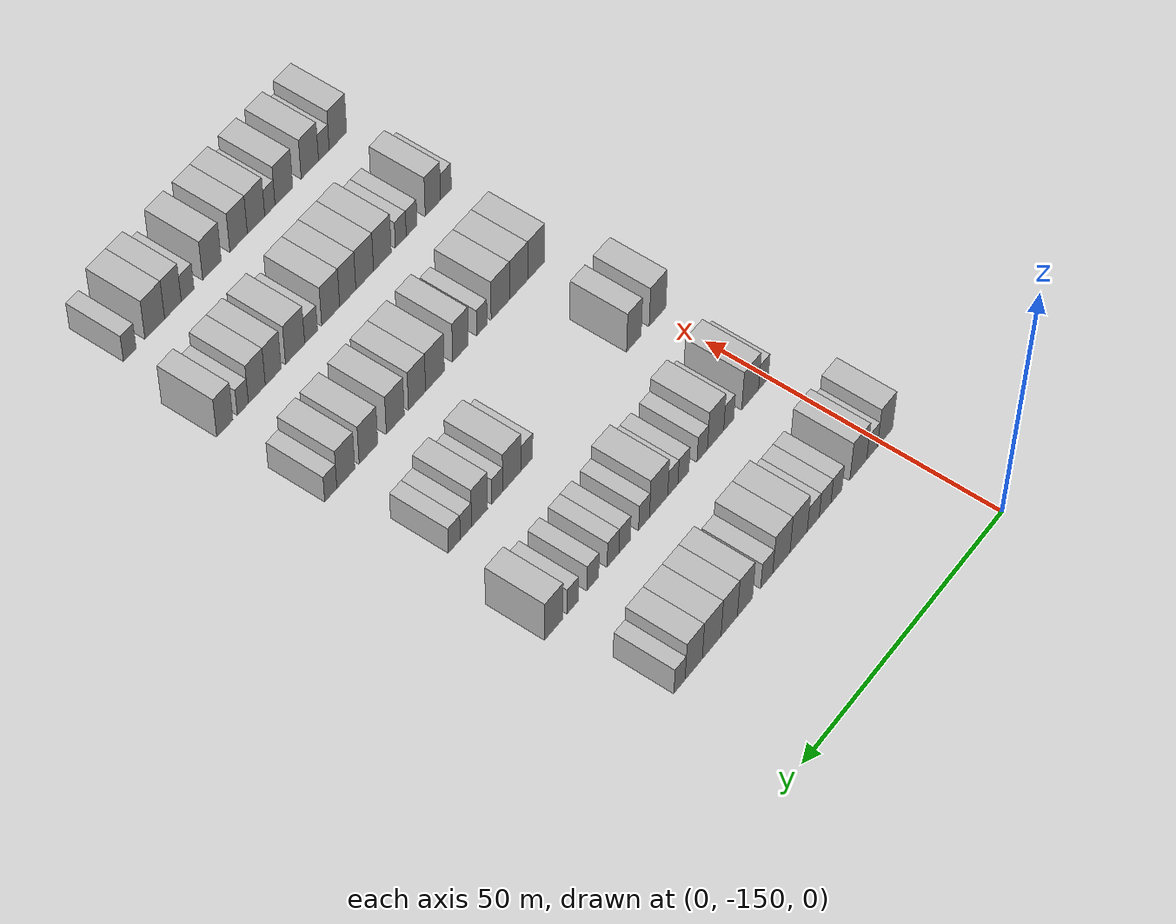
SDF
<sdf version="1.6">
 <world name="default">
  <model name="building_54">
   <static>1</static>
   <pose>25.0000 -150.8825 0 0.000000 0.000000 0.000000</pose>
   <link name="link">
    <pose>0 0 4.50 0 0 0</pose>
    <collision name="collision"><geometry><box><size>10.0000 3.8611 9.0000</size></box></geometry></collision>
    <visual name="visual">
     <cast_shadows>0</cast_shadows>
     <geometry><box><size>10.0000 3.8611 9.0000</size></box></geometry>
     <material>
      <script>
       <uri>model://HANNAS_wall/materials/scripts</uri>
       <uri>model://HANNAS_wall/materials/textures</uri>
       <name>vrc/HANNAS_wall</name>
      </script>
     </material>
    </visual>
   </link>
  </model>
  <model name="building_55">
   <static>1</static>
   <pose>25.0000 -147.5662 0 0.000000 0.000000 0.000000</pose>
   <link name="link">
    <pose>0 0 3.00 0 0 0</pose>
    <collision name="collision"><geometry><box><size>10.0000 2.7713 6.0000</size></box></geometry></collision>
    <visual name="visual">
     <cast_shadows>0</cast_shadows>
     <geometry><box><size>10.0000 2.7713 6.0000</size></box></geometry>
     <material>
      <script>
       <uri>model://HANNAS_wall/materials/scripts</uri>
       <uri>model://HANNAS_wall/materials/textures</uri>
       <name>vrc/HANNAS_wall</name>
      </script>
     </material>
    </visual>
   </link>
  </model>
  <model name="building_56">
   <static>1</static>
   <pose>25.0000 -144.0413 0 0.000000 0.000000 0.000000</pose>
   <link name="link">
    <pose>0 0 4.50 0 0 0</pose>
    <collision name="collision"><geometry><box><size>10.0000 4.2784 9.0000</size></box></geometry></collision>
    <visual name="visual">
     <cast_shadows>0</cast_shadows>
     <geometry><box><size>10.0000 4.2784 9.0000</size></box></geometry>
     <material>
      <script>
       <uri>model://HANNAS_wall/materials/scripts</uri>
       <uri>model://HANNAS_wall/materials/textures</uri>
       <name>vrc/HANNAS_wall</name>
      </script>
     </material>
    </visual>
   </link>
  </model>
  <model name="building_57">
   <static>1</static>
   <pose>25.0000 -138.5179 0 0.000000 0.000000 0.000000</pose>
   <link name="link">
    <pose>0 0 3.00 0 0 0</pose>
    <collision name="collision"><geometry><box><size>10.0000 2.7683 6.0000</size></box></geometry></collision>
    <visual name="visual">
     <cast_shadows>0</cast_shadows>
     <geometry><box><size>10.0000 2.7683 6.0000</size></box></geometry>
     <material>
      <script>
       <uri>model://HANNAS_wall/materials/scripts</uri>
       <uri>model://HANNAS_wall/materials/textures</uri>
       <name>vrc/HANNAS_wall</name>
      </script>
     </material>
    </visual>
   </link>
  </model>
  <model name="building_58">
   <static>1</static>
   <pose>25.0000 -135.6578 0 0.000000 0.000000 0.000000</pose>
   <link name="link">
    <pose>0 0 3.00 0 0 0</pose>
    <collision name="collision"><geometry><box><size>10.0000 2.9520 6.0000</size></box></geometry></collision>
    <visual name="visual">
     <cast_shadows>0</cast_shadows>
     <geometry><box><size>10.0000 2.9520 6.0000</size></box></geometry>
     <material>
      <script>
       <uri>model://HANNAS_wall/materials/scripts</uri>
       <uri>model://HANNAS_wall/materials/textures</uri>
       <name>vrc/HANNAS_wall</name>
      </script>
     </material>
    </visual>
   </link>
  </model>
  <model name="building_59">
   <static>1</static>
   <pose>25.0000 -132.6857 0 0.000000 0.000000 0.000000</pose>
   <link name="link">
    <pose>0 0 3.00 0 0 0</pose>
    <collision name="collision"><geometry><box><size>10.0000 2.9923 6.0000</size></box></geometry></collision>
    <visual name="visual">
     <cast_shadows>0</cast_shadows>
     <geometry><box><size>10.0000 2.9923 6.0000</size></box></geometry>
     <material>
      <script>
       <uri>model://HANNAS_wall/materials/scripts</uri>
       <uri>model://HANNAS_wall/materials/textures</uri>
       <name>vrc/HANNAS_wall</name>
      </script>
     </material>
    </visual>
   </link>
  </model>
  <model name="building_60">
   <static>1</static>
   <pose>25.0000 -129.0565 0 0.000000 0.000000 0.000000</pose>
   <link name="link">
    <pose>0 0 4.50 0 0 0</pose>
    <collision name="collision"><geometry><box><size>10.0000 4.2662 9.0000</size></box></geometry></collision>
    <visual name="visual">
     <cast_shadows>0</cast_shadows>
     <geometry><box><size>10.0000 4.2662 9.0000</size></box></geometry>
     <material>
      <script>
       <uri>model://HANNAS_wall/materials/scripts</uri>
       <uri>model://HANNAS_wall/materials/textures</uri>
       <name>vrc/HANNAS_wall</name>
      </script>
     </material>
    </visual>
   </link>
  </model>
  <model name="building_61">
   <static>1</static>
   <pose>25.0000 -124.8028 0 0.000000 0.000000 0.000000</pose>
   <link name="link">
    <pose>0 0 4.50 0 0 0</pose>
    <collision name="collision"><geometry><box><size>10.0000 4.2411 9.0000</size></box></geometry></collision>
    <visual name="visual">
     <cast_shadows>0</cast_shadows>
     <geometry><box><size>10.0000 4.2411 9.0000</size></box></geometry>
     <material>
      <script>
       <uri>model://HANNAS_wall/materials/scripts</uri>
       <uri>model://HANNAS_wall/materials/textures</uri>
       <name>vrc/HANNAS_wall</name>
      </script>
     </material>
    </visual>
   </link>
  </model>
  <model name="building_62">
   <static>1</static>
   <pose>25.0000 -121.2125 0 0.000000 0.000000 0.000000</pose>
   <link name="link">
    <pose>0 0 3.00 0 0 0</pose>
    <collision name="collision"><geometry><box><size>10.0000 2.9395 6.0000</size></box></geometry></collision>
    <visual name="visual">
     <cast_shadows>0</cast_shadows>
     <geometry><box><size>10.0000 2.9395 6.0000</size></box></geometry>
     <material>
      <script>
       <uri>model://HANNAS_wall/materials/scripts</uri>
       <uri>model://HANNAS_wall/materials/textures</uri>
       <name>vrc/HANNAS_wall</name>
      </script>
     </material>
    </visual>
   </link>
  </model>
  <model name="building_63">
   <static>1</static>
   <pose>25.0000 -115.9065 0 0.000000 0.000000 0.000000</pose>
   <link name="link">
    <pose>0 0 4.50 0 0 0</pose>
    <collision name="collision"><geometry><box><size>10.0000 3.6724 9.0000</size></box></geometry></collision>
    <visual name="visual">
     <cast_shadows>0</cast_shadows>
     <geometry><box><size>10.0000 3.6724 9.0000</size></box></geometry>
     <material>
      <script>
       <uri>model://HANNAS_wall/materials/scripts</uri>
       <uri>model://HANNAS_wall/materials/textures</uri>
       <name>vrc/HANNAS_wall</name>
      </script>
     </material>
    </visual>
   </link>
  </model>
  <model name="building_64">
   <static>1</static>
   <pose>25.0000 -112.1109 0 0.000000 0.000000 0.000000</pose>
   <link name="link">
    <pose>0 0 4.50 0 0 0</pose>
    <collision name="collision"><geometry><box><size>10.0000 3.9188 9.0000</size></box></geometry></collision>
    <visual name="visual">
     <cast_shadows>0</cast_shadows>
     <geometry><box><size>10.0000 3.9188 9.0000</size></box></geometry>
     <material>
      <script>
       <uri>model://HANNAS_wall/materials/scripts</uri>
       <uri>model://HANNAS_wall/materials/textures</uri>
       <name>vrc/HANNAS_wall</name>
      </script>
     </material>
    </visual>
   </link>
  </model>
  <model name="building_65">
   <static>1</static>
   <pose>25.0000 -107.9146 0 0.000000 0.000000 0.000000</pose>
   <link name="link">
    <pose>0 0 4.50 0 0 0</pose>
    <collision name="collision"><geometry><box><size>10.0000 4.4738 9.0000</size></box></geometry></collision>
    <visual name="visual">
     <cast_shadows>0</cast_shadows>
     <geometry><box><size>10.0000 4.4738 9.0000</size></box></geometry>
     <material>
      <script>
       <uri>model://HANNAS_wall/materials/scripts</uri>
       <uri>model://HANNAS_wall/materials/textures</uri>
       <name>vrc/HANNAS_wall</name>
      </script>
     </material>
    </visual>
   </link>
  </model>
  <model name="building_66">
   <static>1</static>
   <pose>25.0000 -103.6319 0 0.000000 0.000000 0.000000</pose>
   <link name="link">
    <pose>0 0 4.50 0 0 0</pose>
    <collision name="collision"><geometry><box><size>10.0000 4.0917 9.0000</size></box></geometry></collision>
    <visual name="visual">
     <cast_shadows>0</cast_shadows>
     <geometry><box><size>10.0000 4.0917 9.0000</size></box></geometry>
     <material>
      <script>
       <uri>model://HANNAS_wall/materials/scripts</uri>
       <uri>model://HANNAS_wall/materials/textures</uri>
       <name>vrc/HANNAS_wall</name>
      </script>
     </material>
    </visual>
   </link>
  </model>
  <model name="building_67">
   <static>1</static>
   <pose>25.0000 -100.2652 0 0.000000 0.000000 0.000000</pose>
   <link name="link">
    <pose>0 0 3.00 0 0 0</pose>
    <collision name="collision"><geometry><box><size>10.0000 2.6417 6.0000</size></box></geometry></collision>
    <visual name="visual">
     <cast_shadows>0</cast_shadows>
     <geometry><box><size>10.0000 2.6417 6.0000</size></box></geometry>
     <material>
      <script>
       <uri>model://HANNAS_wall/materials/scripts</uri>
       <uri>model://HANNAS_wall/materials/textures</uri>
       <name>vrc/HANNAS_wall</name>
      </script>
     </material>
    </visual>
   </link>
  </model>
  <model name="building_217">
   <static>1</static>
   <pose>44.0000 -148.4936 0 0.000000 0.000000 0.000000</pose>
   <link name="link">
    <pose>0 0 3.00 0 0 0</pose>
    <collision name="collision"><geometry><box><size>10.0000 2.4545 6.0000</size></box></geometry></collision>
    <visual name="visual">
     <cast_shadows>0</cast_shadows>
     <geometry><box><size>10.0000 2.4545 6.0000</size></box></geometry>
     <material>
      <script>
       <uri>model://HANNAS_wall/materials/scripts</uri>
       <uri>model://HANNAS_wall/materials/textures</uri>
       <name>vrc/HANNAS_wall</name>
      </script>
     </material>
    </visual>
   </link>
  </model>
  <model name="building_218">
   <static>1</static>
   <pose>44.0000 -145.1571 0 0.000000 0.000000 0.000000</pose>
   <link name="link">
    <pose>0 0 4.50 0 0 0</pose>
    <collision name="collision"><geometry><box><size>10.0000 4.2184 9.0000</size></box></geometry></collision>
    <visual name="visual">
     <cast_shadows>0</cast_shadows>
     <geometry><box><size>10.0000 4.2184 9.0000</size></box></geometry>
     <material>
      <script>
       <uri>model://HANNAS_wall/materials/scripts</uri>
       <uri>model://HANNAS_wall/materials/textures</uri>
       <name>vrc/HANNAS_wall</name>
      </script>
     </material>
    </visual>
   </link>
  </model>
  <model name="building_219">
   <static>1</static>
   <pose>44.0000 -139.7915 0 0.000000 0.000000 0.000000</pose>
   <link name="link">
    <pose>0 0 3.00 0 0 0</pose>
    <collision name="collision"><geometry><box><size>10.0000 2.5128 6.0000</size></box></geometry></collision>
    <visual name="visual">
     <cast_shadows>0</cast_shadows>
     <geometry><box><size>10.0000 2.5128 6.0000</size></box></geometry>
     <material>
      <script>
       <uri>model://HANNAS_wall/materials/scripts</uri>
       <uri>model://HANNAS_wall/materials/textures</uri>
       <name>vrc/HANNAS_wall</name>
      </script>
     </material>
    </visual>
   </link>
  </model>
  <model name="building_220">
   <static>1</static>
   <pose>44.0000 -136.5145 0 0.000000 0.000000 0.000000</pose>
   <link name="link">
    <pose>0 0 4.50 0 0 0</pose>
    <collision name="collision"><geometry><box><size>10.0000 4.0413 9.0000</size></box></geometry></collision>
    <visual name="visual">
     <cast_shadows>0</cast_shadows>
     <geometry><box><size>10.0000 4.0413 9.0000</size></box></geometry>
     <material>
      <script>
       <uri>model://HANNAS_wall/materials/scripts</uri>
       <uri>model://HANNAS_wall/materials/textures</uri>
       <name>vrc/HANNAS_wall</name>
      </script>
     </material>
    </visual>
   </link>
  </model>
  <model name="building_221">
   <static>1</static>
   <pose>44.0000 -133.2113 0 0.000000 0.000000 0.000000</pose>
   <link name="link">
    <pose>0 0 3.00 0 0 0</pose>
    <collision name="collision"><geometry><box><size>10.0000 2.5652 6.0000</size></box></geometry></collision>
    <visual name="visual">
     <cast_shadows>0</cast_shadows>
     <geometry><box><size>10.0000 2.5652 6.0000</size></box></geometry>
     <material>
      <script>
       <uri>model://HANNAS_wall/materials/scripts</uri>
       <uri>model://HANNAS_wall/materials/textures</uri>
       <name>vrc/HANNAS_wall</name>
      </script>
     </material>
    </visual>
   </link>
  </model>
  <model name="building_222">
   <static>1</static>
   <pose>44.0000 -128.5936 0 0.000000 0.000000 0.000000</pose>
   <link name="link">
    <pose>0 0 3.00 0 0 0</pose>
    <collision name="collision"><geometry><box><size>10.0000 2.6702 6.0000</size></box></geometry></collision>
    <visual name="visual">
     <cast_shadows>0</cast_shadows>
     <geometry><box><size>10.0000 2.6702 6.0000</size></box></geometry>
     <material>
      <script>
       <uri>model://HANNAS_wall/materials/scripts</uri>
       <uri>model://HANNAS_wall/materials/textures</uri>
       <name>vrc/HANNAS_wall</name>
      </script>
     </material>
    </visual>
   </link>
  </model>
  <model name="building_223">
   <static>1</static>
   <pose>44.0000 -126.0182 0 0.000000 0.000000 0.000000</pose>
   <link name="link">
    <pose>0 0 3.00 0 0 0</pose>
    <collision name="collision"><geometry><box><size>10.0000 2.4804 6.0000</size></box></geometry></collision>
    <visual name="visual">
     <cast_shadows>0</cast_shadows>
     <geometry><box><size>10.0000 2.4804 6.0000</size></box></geometry>
     <material>
      <script>
       <uri>model://HANNAS_wall/materials/scripts</uri>
       <uri>model://HANNAS_wall/materials/textures</uri>
       <name>vrc/HANNAS_wall</name>
      </script>
     </material>
    </visual>
   </link>
  </model>
  <model name="building_224">
   <static>1</static>
   <pose>44.0000 -122.5617 0 0.000000 0.000000 0.000000</pose>
   <link name="link">
    <pose>0 0 4.50 0 0 0</pose>
    <collision name="collision"><geometry><box><size>10.0000 4.4325 9.0000</size></box></geometry></collision>
    <visual name="visual">
     <cast_shadows>0</cast_shadows>
     <geometry><box><size>10.0000 4.4325 9.0000</size></box></geometry>
     <material>
      <script>
       <uri>model://HANNAS_wall/materials/scripts</uri>
       <uri>model://HANNAS_wall/materials/textures</uri>
       <name>vrc/HANNAS_wall</name>
      </script>
     </material>
    </visual>
   </link>
  </model>
  <model name="building_225">
   <static>1</static>
   <pose>44.0000 -119.0333 0 0.000000 0.000000 0.000000</pose>
   <link name="link">
    <pose>0 0 3.00 0 0 0</pose>
    <collision name="collision"><geometry><box><size>10.0000 2.6243 6.0000</size></box></geometry></collision>
    <visual name="visual">
     <cast_shadows>0</cast_shadows>
     <geometry><box><size>10.0000 2.6243 6.0000</size></box></geometry>
     <material>
      <script>
       <uri>model://HANNAS_wall/materials/scripts</uri>
       <uri>model://HANNAS_wall/materials/textures</uri>
       <name>vrc/HANNAS_wall</name>
      </script>
     </material>
    </visual>
   </link>
  </model>
  <model name="building_226">
   <static>1</static>
   <pose>44.0000 -114.3722 0 0.000000 0.000000 0.000000</pose>
   <link name="link">
    <pose>0 0 3.00 0 0 0</pose>
    <collision name="collision"><geometry><box><size>10.0000 2.6979 6.0000</size></box></geometry></collision>
    <visual name="visual">
     <cast_shadows>0</cast_shadows>
     <geometry><box><size>10.0000 2.6979 6.0000</size></box></geometry>
     <material>
      <script>
       <uri>model://HANNAS_wall/materials/scripts</uri>
       <uri>model://HANNAS_wall/materials/textures</uri>
       <name>vrc/HANNAS_wall</name>
      </script>
     </material>
    </visual>
   </link>
  </model>
  <model name="building_227">
   <static>1</static>
   <pose>44.0000 -111.6174 0 0.000000 0.000000 0.000000</pose>
   <link name="link">
    <pose>0 0 3.00 0 0 0</pose>
    <collision name="collision"><geometry><box><size>10.0000 2.8118 6.0000</size></box></geometry></collision>
    <visual name="visual">
     <cast_shadows>0</cast_shadows>
     <geometry><box><size>10.0000 2.8118 6.0000</size></box></geometry>
     <material>
      <script>
       <uri>model://HANNAS_wall/materials/scripts</uri>
       <uri>model://HANNAS_wall/materials/textures</uri>
       <name>vrc/HANNAS_wall</name>
      </script>
     </material>
    </visual>
   </link>
  </model>
  <model name="building_228">
   <static>1</static>
   <pose>44.0000 -106.8320 0 0.000000 0.000000 0.000000</pose>
   <link name="link">
    <pose>0 0 3.00 0 0 0</pose>
    <collision name="collision"><geometry><box><size>10.0000 2.7588 6.0000</size></box></geometry></collision>
    <visual name="visual">
     <cast_shadows>0</cast_shadows>
     <geometry><box><size>10.0000 2.7588 6.0000</size></box></geometry>
     <material>
      <script>
       <uri>model://HANNAS_wall/materials/scripts</uri>
       <uri>model://HANNAS_wall/materials/textures</uri>
       <name>vrc/HANNAS_wall</name>
      </script>
     </material>
    </visual>
   </link>
  </model>
  <model name="building_229">
   <static>1</static>
   <pose>44.0000 -102.1267 0 0.000000 0.000000 0.000000</pose>
   <link name="link">
    <pose>0 0 3.00 0 0 0</pose>
    <collision name="collision"><geometry><box><size>10.0000 2.6518 6.0000</size></box></geometry></collision>
    <visual name="visual">
     <cast_shadows>0</cast_shadows>
     <geometry><box><size>10.0000 2.6518 6.0000</size></box></geometry>
     <material>
      <script>
       <uri>model://HANNAS_wall/materials/scripts</uri>
       <uri>model://HANNAS_wall/materials/textures</uri>
       <name>vrc/HANNAS_wall</name>
      </script>
     </material>
    </visual>
   </link>
  </model>
  <model name="building_230">
   <static>1</static>
   <pose>44.0000 -97.6982 0 0.000000 0.000000 0.000000</pose>
   <link name="link">
    <pose>0 0 4.50 0 0 0</pose>
    <collision name="collision"><geometry><box><size>10.0000 4.2053 9.0000</size></box></geometry></collision>
    <visual name="visual">
     <cast_shadows>0</cast_shadows>
     <geometry><box><size>10.0000 4.2053 9.0000</size></box></geometry>
     <material>
      <script>
       <uri>model://HANNAS_wall/materials/scripts</uri>
       <uri>model://HANNAS_wall/materials/textures</uri>
       <name>vrc/HANNAS_wall</name>
      </script>
     </material>
    </visual>
   </link>
  </model>
  <model name="building_389">
   <static>1</static>
   <pose>63.0000 -149.4729 0 0.000000 0.000000 0.000000</pose>
   <link name="link">
    <pose>0 0 4.50 0 0 0</pose>
    <collision name="collision"><geometry><box><size>10.0000 4.1572 9.0000</size></box></geometry></collision>
    <visual name="visual">
     <cast_shadows>0</cast_shadows>
     <geometry><box><size>10.0000 4.1572 9.0000</size></box></geometry>
     <material>
      <script>
       <uri>model://HANNAS_wall/materials/scripts</uri>
       <uri>model://HANNAS_wall/materials/textures</uri>
       <name>vrc/HANNAS_wall</name>
      </script>
     </material>
    </visual>
   </link>
  </model>
  <model name="building_390">
   <static>1</static>
   <pose>63.0000 -143.5876 0 0.000000 0.000000 0.000000</pose>
   <link name="link">
    <pose>0 0 4.50 0 0 0</pose>
    <collision name="collision"><geometry><box><size>10.0000 3.6134 9.0000</size></box></geometry></collision>
    <visual name="visual">
     <cast_shadows>0</cast_shadows>
     <geometry><box><size>10.0000 3.6134 9.0000</size></box></geometry>
     <material>
      <script>
       <uri>model://HANNAS_wall/materials/scripts</uri>
       <uri>model://HANNAS_wall/materials/textures</uri>
       <name>vrc/HANNAS_wall</name>
      </script>
     </material>
    </visual>
   </link>
  </model>
  <model name="building_391">
   <static>1</static>
   <pose>63.0000 -117.6150 0 0.000000 0.000000 0.000000</pose>
   <link name="link">
    <pose>0 0 3.00 0 0 0</pose>
    <collision name="collision"><geometry><box><size>10.0000 2.7772 6.0000</size></box></geometry></collision>
    <visual name="visual">
     <cast_shadows>0</cast_shadows>
     <geometry><box><size>10.0000 2.7772 6.0000</size></box></geometry>
     <material>
      <script>
       <uri>model://HANNAS_wall/materials/scripts</uri>
       <uri>model://HANNAS_wall/materials/textures</uri>
       <name>vrc/HANNAS_wall</name>
      </script>
     </material>
    </visual>
   </link>
  </model>
  <model name="building_392">
   <static>1</static>
   <pose>63.0000 -114.0514 0 0.000000 0.000000 0.000000</pose>
   <link name="link">
    <pose>0 0 4.50 0 0 0</pose>
    <collision name="collision"><geometry><box><size>10.0000 4.3501 9.0000</size></box></geometry></collision>
    <visual name="visual">
     <cast_shadows>0</cast_shadows>
     <geometry><box><size>10.0000 4.3501 9.0000</size></box></geometry>
     <material>
      <script>
       <uri>model://HANNAS_wall/materials/scripts</uri>
       <uri>model://HANNAS_wall/materials/textures</uri>
       <name>vrc/HANNAS_wall</name>
      </script>
     </material>
    </visual>
   </link>
  </model>
  <model name="building_393">
   <static>1</static>
   <pose>63.0000 -110.6097 0 0.000000 0.000000 0.000000</pose>
   <link name="link">
    <pose>0 0 3.00 0 0 0</pose>
    <collision name="collision"><geometry><box><size>10.0000 2.5334 6.0000</size></box></geometry></collision>
    <visual name="visual">
     <cast_shadows>0</cast_shadows>
     <geometry><box><size>10.0000 2.5334 6.0000</size></box></geometry>
     <material>
      <script>
       <uri>model://HANNAS_wall/materials/scripts</uri>
       <uri>model://HANNAS_wall/materials/textures</uri>
       <name>vrc/HANNAS_wall</name>
      </script>
     </material>
    </visual>
   </link>
  </model>
  <model name="building_394">
   <static>1</static>
   <pose>63.0000 -106.4754 0 0.000000 0.000000 0.000000</pose>
   <link name="link">
    <pose>0 0 4.50 0 0 0</pose>
    <collision name="collision"><geometry><box><size>10.0000 3.7352 9.0000</size></box></geometry></collision>
    <visual name="visual">
     <cast_shadows>0</cast_shadows>
     <geometry><box><size>10.0000 3.7352 9.0000</size></box></geometry>
     <material>
      <script>
       <uri>model://HANNAS_wall/materials/scripts</uri>
       <uri>model://HANNAS_wall/materials/textures</uri>
       <name>vrc/HANNAS_wall</name>
      </script>
     </material>
    </visual>
   </link>
  </model>
  <model name="building_395">
   <static>1</static>
   <pose>63.0000 -103.2960 0 0.000000 0.000000 0.000000</pose>
   <link name="link">
    <pose>0 0 3.00 0 0 0</pose>
    <collision name="collision"><geometry><box><size>10.0000 2.6235 6.0000</size></box></geometry></collision>
    <visual name="visual">
     <cast_shadows>0</cast_shadows>
     <geometry><box><size>10.0000 2.6235 6.0000</size></box></geometry>
     <material>
      <script>
       <uri>model://HANNAS_wall/materials/scripts</uri>
       <uri>model://HANNAS_wall/materials/textures</uri>
       <name>vrc/HANNAS_wall</name>
      </script>
     </material>
    </visual>
   </link>
  </model>
  <model name="building_396">
   <static>1</static>
   <pose>63.0000 -100.6237 0 0.000000 0.000000 0.000000</pose>
   <link name="link">
    <pose>0 0 3.00 0 0 0</pose>
    <collision name="collision"><geometry><box><size>10.0000 2.7212 6.0000</size></box></geometry></collision>
    <visual name="visual">
     <cast_shadows>0</cast_shadows>
     <geometry><box><size>10.0000 2.7212 6.0000</size></box></geometry>
     <material>
      <script>
       <uri>model://HANNAS_wall/materials/scripts</uri>
       <uri>model://HANNAS_wall/materials/textures</uri>
       <name>vrc/HANNAS_wall</name>
      </script>
     </material>
    </visual>
   </link>
  </model>
  <model name="building_560">
   <static>1</static>
   <pose>82.0000 -146.0122 0 0.000000 0.000000 0.000000</pose>
   <link name="link">
    <pose>0 0 4.50 0 0 0</pose>
    <collision name="collision"><geometry><box><size>10.0000 4.1546 9.0000</size></box></geometry></collision>
    <visual name="visual">
     <cast_shadows>0</cast_shadows>
     <geometry><box><size>10.0000 4.1546 9.0000</size></box></geometry>
     <material>
      <script>
       <uri>model://HANNAS_wall/materials/scripts</uri>
       <uri>model://HANNAS_wall/materials/textures</uri>
       <name>vrc/HANNAS_wall</name>
      </script>
     </material>
    </visual>
   </link>
  </model>
  <model name="building_561">
   <static>1</static>
   <pose>82.0000 -141.7136 0 0.000000 0.000000 0.000000</pose>
   <link name="link">
    <pose>0 0 4.50 0 0 0</pose>
    <collision name="collision"><geometry><box><size>10.0000 4.4424 9.0000</size></box></geometry></collision>
    <visual name="visual">
     <cast_shadows>0</cast_shadows>
     <geometry><box><size>10.0000 4.4424 9.0000</size></box></geometry>
     <material>
      <script>
       <uri>model://HANNAS_wall/materials/scripts</uri>
       <uri>model://HANNAS_wall/materials/textures</uri>
       <name>vrc/HANNAS_wall</name>
      </script>
     </material>
    </visual>
   </link>
  </model>
  <model name="building_562">
   <static>1</static>
   <pose>82.0000 -137.2453 0 0.000000 0.000000 0.000000</pose>
   <link name="link">
    <pose>0 0 4.50 0 0 0</pose>
    <collision name="collision"><geometry><box><size>10.0000 4.4943 9.0000</size></box></geometry></collision>
    <visual name="visual">
     <cast_shadows>0</cast_shadows>
     <geometry><box><size>10.0000 4.4943 9.0000</size></box></geometry>
     <material>
      <script>
       <uri>model://HANNAS_wall/materials/scripts</uri>
       <uri>model://HANNAS_wall/materials/textures</uri>
       <name>vrc/HANNAS_wall</name>
      </script>
     </material>
    </visual>
   </link>
  </model>
  <model name="building_563">
   <static>1</static>
   <pose>82.0000 -132.7556 0 0.000000 0.000000 0.000000</pose>
   <link name="link">
    <pose>0 0 3.00 0 0 0</pose>
    <collision name="collision"><geometry><box><size>10.0000 2.4852 6.0000</size></box></geometry></collision>
    <visual name="visual">
     <cast_shadows>0</cast_shadows>
     <geometry><box><size>10.0000 2.4852 6.0000</size></box></geometry>
     <material>
      <script>
       <uri>model://HANNAS_wall/materials/scripts</uri>
       <uri>model://HANNAS_wall/materials/textures</uri>
       <name>vrc/HANNAS_wall</name>
      </script>
     </material>
    </visual>
   </link>
  </model>
  <model name="building_564">
   <static>1</static>
   <pose>82.0000 -127.6416 0 0.000000 0.000000 0.000000</pose>
   <link name="link">
    <pose>0 0 4.50 0 0 0</pose>
    <collision name="collision"><geometry><box><size>10.0000 3.7428 9.0000</size></box></geometry></collision>
    <visual name="visual">
     <cast_shadows>0</cast_shadows>
     <geometry><box><size>10.0000 3.7428 9.0000</size></box></geometry>
     <material>
      <script>
       <uri>model://HANNAS_wall/materials/scripts</uri>
       <uri>model://HANNAS_wall/materials/textures</uri>
       <name>vrc/HANNAS_wall</name>
      </script>
     </material>
    </visual>
   </link>
  </model>
  <model name="building_565">
   <static>1</static>
   <pose>82.0000 -121.5636 0 0.000000 0.000000 0.000000</pose>
   <link name="link">
    <pose>0 0 4.50 0 0 0</pose>
    <collision name="collision"><geometry><box><size>10.0000 4.4130 9.0000</size></box></geometry></collision>
    <visual name="visual">
     <cast_shadows>0</cast_shadows>
     <geometry><box><size>10.0000 4.4130 9.0000</size></box></geometry>
     <material>
      <script>
       <uri>model://HANNAS_wall/materials/scripts</uri>
       <uri>model://HANNAS_wall/materials/textures</uri>
       <name>vrc/HANNAS_wall</name>
      </script>
     </material>
    </visual>
   </link>
  </model>
  <model name="building_566">
   <static>1</static>
   <pose>82.0000 -117.3421 0 0.000000 0.000000 0.000000</pose>
   <link name="link">
    <pose>0 0 4.50 0 0 0</pose>
    <collision name="collision"><geometry><box><size>10.0000 4.0299 9.0000</size></box></geometry></collision>
    <visual name="visual">
     <cast_shadows>0</cast_shadows>
     <geometry><box><size>10.0000 4.0299 9.0000</size></box></geometry>
     <material>
      <script>
       <uri>model://HANNAS_wall/materials/scripts</uri>
       <uri>model://HANNAS_wall/materials/textures</uri>
       <name>vrc/HANNAS_wall</name>
      </script>
     </material>
    </visual>
   </link>
  </model>
  <model name="building_567">
   <static>1</static>
   <pose>82.0000 -112.2421 0 0.000000 0.000000 0.000000</pose>
   <link name="link">
    <pose>0 0 4.50 0 0 0</pose>
    <collision name="collision"><geometry><box><size>10.0000 4.1702 9.0000</size></box></geometry></collision>
    <visual name="visual">
     <cast_shadows>0</cast_shadows>
     <geometry><box><size>10.0000 4.1702 9.0000</size></box></geometry>
     <material>
      <script>
       <uri>model://HANNAS_wall/materials/scripts</uri>
       <uri>model://HANNAS_wall/materials/textures</uri>
       <name>vrc/HANNAS_wall</name>
      </script>
     </material>
    </visual>
   </link>
  </model>
  <model name="building_568">
   <static>1</static>
   <pose>82.0000 -106.0123 0 0.000000 0.000000 0.000000</pose>
   <link name="link">
    <pose>0 0 4.50 0 0 0</pose>
    <collision name="collision"><geometry><box><size>10.0000 4.2893 9.0000</size></box></geometry></collision>
    <visual name="visual">
     <cast_shadows>0</cast_shadows>
     <geometry><box><size>10.0000 4.2893 9.0000</size></box></geometry>
     <material>
      <script>
       <uri>model://HANNAS_wall/materials/scripts</uri>
       <uri>model://HANNAS_wall/materials/textures</uri>
       <name>vrc/HANNAS_wall</name>
      </script>
     </material>
    </visual>
   </link>
  </model>
  <model name="building_569">
   <static>1</static>
   <pose>82.0000 -100.8141 0 0.000000 0.000000 0.000000</pose>
   <link name="link">
    <pose>0 0 4.50 0 0 0</pose>
    <collision name="collision"><geometry><box><size>10.0000 4.1071 9.0000</size></box></geometry></collision>
    <visual name="visual">
     <cast_shadows>0</cast_shadows>
     <geometry><box><size>10.0000 4.1071 9.0000</size></box></geometry>
     <material>
      <script>
       <uri>model://HANNAS_wall/materials/scripts</uri>
       <uri>model://HANNAS_wall/materials/textures</uri>
       <name>vrc/HANNAS_wall</name>
      </script>
     </material>
    </visual>
   </link>
  </model>
  <model name="building_570">
   <static>1</static>
   <pose>82.0000 -97.3782 0 0.000000 0.000000 0.000000</pose>
   <link name="link">
    <pose>0 0 3.00 0 0 0</pose>
    <collision name="collision"><geometry><box><size>10.0000 2.7646 6.0000</size></box></geometry></collision>
    <visual name="visual">
     <cast_shadows>0</cast_shadows>
     <geometry><box><size>10.0000 2.7646 6.0000</size></box></geometry>
     <material>
      <script>
       <uri>model://HANNAS_wall/materials/scripts</uri>
       <uri>model://HANNAS_wall/materials/textures</uri>
       <name>vrc/HANNAS_wall</name>
      </script>
     </material>
    </visual>
   </link>
  </model>
  <model name="building_727">
   <static>1</static>
   <pose>101.0000 -149.6343 0 0.000000 0.000000 0.000000</pose>
   <link name="link">
    <pose>0 0 3.00 0 0 0</pose>
    <collision name="collision"><geometry><box><size>10.0000 2.6302 6.0000</size></box></geometry></collision>
    <visual name="visual">
     <cast_shadows>0</cast_shadows>
     <geometry><box><size>10.0000 2.6302 6.0000</size></box></geometry>
     <material>
      <script>
       <uri>model://HANNAS_wall/materials/scripts</uri>
       <uri>model://HANNAS_wall/materials/textures</uri>
       <name>vrc/HANNAS_wall</name>
      </script>
     </material>
    </visual>
   </link>
  </model>
  <model name="building_728">
   <static>1</static>
   <pose>101.0000 -146.4441 0 0.000000 0.000000 0.000000</pose>
   <link name="link">
    <pose>0 0 4.50 0 0 0</pose>
    <collision name="collision"><geometry><box><size>10.0000 3.7503 9.0000</size></box></geometry></collision>
    <visual name="visual">
     <cast_shadows>0</cast_shadows>
     <geometry><box><size>10.0000 3.7503 9.0000</size></box></geometry>
     <material>
      <script>
       <uri>model://HANNAS_wall/materials/scripts</uri>
       <uri>model://HANNAS_wall/materials/textures</uri>
       <name>vrc/HANNAS_wall</name>
      </script>
     </material>
    </visual>
   </link>
  </model>
  <model name="building_729">
   <static>1</static>
   <pose>101.0000 -141.2668 0 0.000000 0.000000 0.000000</pose>
   <link name="link">
    <pose>0 0 3.00 0 0 0</pose>
    <collision name="collision"><geometry><box><size>10.0000 2.6042 6.0000</size></box></geometry></collision>
    <visual name="visual">
     <cast_shadows>0</cast_shadows>
     <geometry><box><size>10.0000 2.6042 6.0000</size></box></geometry>
     <material>
      <script>
       <uri>model://HANNAS_wall/materials/scripts</uri>
       <uri>model://HANNAS_wall/materials/textures</uri>
       <name>vrc/HANNAS_wall</name>
      </script>
     </material>
    </visual>
   </link>
  </model>
  <model name="building_730">
   <static>1</static>
   <pose>101.0000 -138.6477 0 0.000000 0.000000 0.000000</pose>
   <link name="link">
    <pose>0 0 3.00 0 0 0</pose>
    <collision name="collision"><geometry><box><size>10.0000 2.6341 6.0000</size></box></geometry></collision>
    <visual name="visual">
     <cast_shadows>0</cast_shadows>
     <geometry><box><size>10.0000 2.6341 6.0000</size></box></geometry>
     <material>
      <script>
       <uri>model://HANNAS_wall/materials/scripts</uri>
       <uri>model://HANNAS_wall/materials/textures</uri>
       <name>vrc/HANNAS_wall</name>
      </script>
     </material>
    </visual>
   </link>
  </model>
  <model name="building_731">
   <static>1</static>
   <pose>101.0000 -134.2177 0 0.000000 0.000000 0.000000</pose>
   <link name="link">
    <pose>0 0 4.50 0 0 0</pose>
    <collision name="collision"><geometry><box><size>10.0000 4.2258 9.0000</size></box></geometry></collision>
    <visual name="visual">
     <cast_shadows>0</cast_shadows>
     <geometry><box><size>10.0000 4.2258 9.0000</size></box></geometry>
     <material>
      <script>
       <uri>model://HANNAS_wall/materials/scripts</uri>
       <uri>model://HANNAS_wall/materials/textures</uri>
       <name>vrc/HANNAS_wall</name>
      </script>
     </material>
    </visual>
   </link>
  </model>
  <model name="building_732">
   <static>1</static>
   <pose>101.0000 -129.9952 0 0.000000 0.000000 0.000000</pose>
   <link name="link">
    <pose>0 0 4.50 0 0 0</pose>
    <collision name="collision"><geometry><box><size>10.0000 4.2193 9.0000</size></box></geometry></collision>
    <visual name="visual">
     <cast_shadows>0</cast_shadows>
     <geometry><box><size>10.0000 4.2193 9.0000</size></box></geometry>
     <material>
      <script>
       <uri>model://HANNAS_wall/materials/scripts</uri>
       <uri>model://HANNAS_wall/materials/textures</uri>
       <name>vrc/HANNAS_wall</name>
      </script>
     </material>
    </visual>
   </link>
  </model>
  <model name="building_733">
   <static>1</static>
   <pose>101.0000 -125.9795 0 0.000000 0.000000 0.000000</pose>
   <link name="link">
    <pose>0 0 4.50 0 0 0</pose>
    <collision name="collision"><geometry><box><size>10.0000 3.8121 9.0000</size></box></geometry></collision>
    <visual name="visual">
     <cast_shadows>0</cast_shadows>
     <geometry><box><size>10.0000 3.8121 9.0000</size></box></geometry>
     <material>
      <script>
       <uri>model://HANNAS_wall/materials/scripts</uri>
       <uri>model://HANNAS_wall/materials/textures</uri>
       <name>vrc/HANNAS_wall</name>
      </script>
     </material>
    </visual>
   </link>
  </model>
  <model name="building_734">
   <static>1</static>
   <pose>101.0000 -121.9603 0 0.000000 0.000000 0.000000</pose>
   <link name="link">
    <pose>0 0 4.50 0 0 0</pose>
    <collision name="collision"><geometry><box><size>10.0000 4.2264 9.0000</size></box></geometry></collision>
    <visual name="visual">
     <cast_shadows>0</cast_shadows>
     <geometry><box><size>10.0000 4.2264 9.0000</size></box></geometry>
     <material>
      <script>
       <uri>model://HANNAS_wall/materials/scripts</uri>
       <uri>model://HANNAS_wall/materials/textures</uri>
       <name>vrc/HANNAS_wall</name>
      </script>
     </material>
    </visual>
   </link>
  </model>
  <model name="building_735">
   <static>1</static>
   <pose>101.0000 -117.3638 0 0.000000 0.000000 0.000000</pose>
   <link name="link">
    <pose>0 0 3.00 0 0 0</pose>
    <collision name="collision"><geometry><box><size>10.0000 2.9667 6.0000</size></box></geometry></collision>
    <visual name="visual">
     <cast_shadows>0</cast_shadows>
     <geometry><box><size>10.0000 2.9667 6.0000</size></box></geometry>
     <material>
      <script>
       <uri>model://HANNAS_wall/materials/scripts</uri>
       <uri>model://HANNAS_wall/materials/textures</uri>
       <name>vrc/HANNAS_wall</name>
      </script>
     </material>
    </visual>
   </link>
  </model>
  <model name="building_736">
   <static>1</static>
   <pose>101.0000 -113.6547 0 0.000000 0.000000 0.000000</pose>
   <link name="link">
    <pose>0 0 4.50 0 0 0</pose>
    <collision name="collision"><geometry><box><size>10.0000 4.4514 9.0000</size></box></geometry></collision>
    <visual name="visual">
     <cast_shadows>0</cast_shadows>
     <geometry><box><size>10.0000 4.4514 9.0000</size></box></geometry>
     <material>
      <script>
       <uri>model://HANNAS_wall/materials/scripts</uri>
       <uri>model://HANNAS_wall/materials/textures</uri>
       <name>vrc/HANNAS_wall</name>
      </script>
     </material>
    </visual>
   </link>
  </model>
  <model name="building_737">
   <static>1</static>
   <pose>101.0000 -108.6122 0 0.000000 0.000000 0.000000</pose>
   <link name="link">
    <pose>0 0 4.50 0 0 0</pose>
    <collision name="collision"><geometry><box><size>10.0000 3.6336 9.0000</size></box></geometry></collision>
    <visual name="visual">
     <cast_shadows>0</cast_shadows>
     <geometry><box><size>10.0000 3.6336 9.0000</size></box></geometry>
     <material>
      <script>
       <uri>model://HANNAS_wall/materials/scripts</uri>
       <uri>model://HANNAS_wall/materials/textures</uri>
       <name>vrc/HANNAS_wall</name>
      </script>
     </material>
    </visual>
   </link>
  </model>
  <model name="building_738">
   <static>1</static>
   <pose>101.0000 -104.8666 0 0.000000 0.000000 0.000000</pose>
   <link name="link">
    <pose>0 0 4.50 0 0 0</pose>
    <collision name="collision"><geometry><box><size>10.0000 3.8575 9.0000</size></box></geometry></collision>
    <visual name="visual">
     <cast_shadows>0</cast_shadows>
     <geometry><box><size>10.0000 3.8575 9.0000</size></box></geometry>
     <material>
      <script>
       <uri>model://HANNAS_wall/materials/scripts</uri>
       <uri>model://HANNAS_wall/materials/textures</uri>
       <name>vrc/HANNAS_wall</name>
      </script>
     </material>
    </visual>
   </link>
  </model>
  <model name="building_739">
   <static>1</static>
   <pose>101.0000 -101.6798 0 0.000000 0.000000 0.000000</pose>
   <link name="link">
    <pose>0 0 3.00 0 0 0</pose>
    <collision name="collision"><geometry><box><size>10.0000 2.5162 6.0000</size></box></geometry></collision>
    <visual name="visual">
     <cast_shadows>0</cast_shadows>
     <geometry><box><size>10.0000 2.5162 6.0000</size></box></geometry>
     <material>
      <script>
       <uri>model://HANNAS_wall/materials/scripts</uri>
       <uri>model://HANNAS_wall/materials/textures</uri>
       <name>vrc/HANNAS_wall</name>
      </script>
     </material>
    </visual>
   </link>
  </model>
  <model name="building_740">
   <static>1</static>
   <pose>101.0000 -97.6007 0 0.000000 0.000000 0.000000</pose>
   <link name="link">
    <pose>0 0 4.50 0 0 0</pose>
    <collision name="collision"><geometry><box><size>10.0000 3.6419 9.0000</size></box></geometry></collision>
    <visual name="visual">
     <cast_shadows>0</cast_shadows>
     <geometry><box><size>10.0000 3.6419 9.0000</size></box></geometry>
     <material>
      <script>
       <uri>model://HANNAS_wall/materials/scripts</uri>
       <uri>model://HANNAS_wall/materials/textures</uri>
       <name>vrc/HANNAS_wall</name>
      </script>
     </material>
    </visual>
   </link>
  </model>
  <model name="building_904">
   <static>1</static>
   <pose>120.0000 -148.3058 0 0.000000 0.000000 0.000000</pose>
   <link name="link">
    <pose>0 0 4.50 0 0 0</pose>
    <collision name="collision"><geometry><box><size>10.0000 4.2257 9.0000</size></box></geometry></collision>
    <visual name="visual">
     <cast_shadows>0</cast_shadows>
     <geometry><box><size>10.0000 4.2257 9.0000</size></box></geometry>
     <material>
      <script>
       <uri>model://HANNAS_wall/materials/scripts</uri>
       <uri>model://HANNAS_wall/materials/textures</uri>
       <name>vrc/HANNAS_wall</name>
      </script>
     </material>
    </visual>
   </link>
  </model>
  <model name="building_905">
   <static>1</static>
   <pose>120.0000 -144.9013 0 0.000000 0.000000 0.000000</pose>
   <link name="link">
    <pose>0 0 3.00 0 0 0</pose>
    <collision name="collision"><geometry><box><size>10.0000 2.5834 6.0000</size></box></geometry></collision>
    <visual name="visual">
     <cast_shadows>0</cast_shadows>
     <geometry><box><size>10.0000 2.5834 6.0000</size></box></geometry>
     <material>
      <script>
       <uri>model://HANNAS_wall/materials/scripts</uri>
       <uri>model://HANNAS_wall/materials/textures</uri>
       <name>vrc/HANNAS_wall</name>
      </script>
     </material>
    </visual>
   </link>
  </model>
  <model name="building_906">
   <static>1</static>
   <pose>120.0000 -141.5222 0 0.000000 0.000000 0.000000</pose>
   <link name="link">
    <pose>0 0 4.50 0 0 0</pose>
    <collision name="collision"><geometry><box><size>10.0000 4.1747 9.0000</size></box></geometry></collision>
    <visual name="visual">
     <cast_shadows>0</cast_shadows>
     <geometry><box><size>10.0000 4.1747 9.0000</size></box></geometry>
     <material>
      <script>
       <uri>model://HANNAS_wall/materials/scripts</uri>
       <uri>model://HANNAS_wall/materials/textures</uri>
       <name>vrc/HANNAS_wall</name>
      </script>
     </material>
    </visual>
   </link>
  </model>
  <model name="building_907">
   <static>1</static>
   <pose>120.0000 -135.3286 0 0.000000 0.000000 0.000000</pose>
   <link name="link">
    <pose>0 0 4.50 0 0 0</pose>
    <collision name="collision"><geometry><box><size>10.0000 4.2126 9.0000</size></box></geometry></collision>
    <visual name="visual">
     <cast_shadows>0</cast_shadows>
     <geometry><box><size>10.0000 4.2126 9.0000</size></box></geometry>
     <material>
      <script>
       <uri>model://HANNAS_wall/materials/scripts</uri>
       <uri>model://HANNAS_wall/materials/textures</uri>
       <name>vrc/HANNAS_wall</name>
      </script>
     </material>
    </visual>
   </link>
  </model>
  <model name="building_908">
   <static>1</static>
   <pose>120.0000 -132.0034 0 0.000000 0.000000 0.000000</pose>
   <link name="link">
    <pose>0 0 3.00 0 0 0</pose>
    <collision name="collision"><geometry><box><size>10.0000 2.4378 6.0000</size></box></geometry></collision>
    <visual name="visual">
     <cast_shadows>0</cast_shadows>
     <geometry><box><size>10.0000 2.4378 6.0000</size></box></geometry>
     <material>
      <script>
       <uri>model://HANNAS_wall/materials/scripts</uri>
       <uri>model://HANNAS_wall/materials/textures</uri>
       <name>vrc/HANNAS_wall</name>
      </script>
     </material>
    </visual>
   </link>
  </model>
  <model name="building_909">
   <static>1</static>
   <pose>120.0000 -128.7365 0 0.000000 0.000000 0.000000</pose>
   <link name="link">
    <pose>0 0 4.50 0 0 0</pose>
    <collision name="collision"><geometry><box><size>10.0000 4.0961 9.0000</size></box></geometry></collision>
    <visual name="visual">
     <cast_shadows>0</cast_shadows>
     <geometry><box><size>10.0000 4.0961 9.0000</size></box></geometry>
     <material>
      <script>
       <uri>model://HANNAS_wall/materials/scripts</uri>
       <uri>model://HANNAS_wall/materials/textures</uri>
       <name>vrc/HANNAS_wall</name>
      </script>
     </material>
    </visual>
   </link>
  </model>
  <model name="building_910">
   <static>1</static>
   <pose>120.0000 -124.6383 0 0.000000 0.000000 0.000000</pose>
   <link name="link">
    <pose>0 0 4.50 0 0 0</pose>
    <collision name="collision"><geometry><box><size>10.0000 4.1002 9.0000</size></box></geometry></collision>
    <visual name="visual">
     <cast_shadows>0</cast_shadows>
     <geometry><box><size>10.0000 4.1002 9.0000</size></box></geometry>
     <material>
      <script>
       <uri>model://HANNAS_wall/materials/scripts</uri>
       <uri>model://HANNAS_wall/materials/textures</uri>
       <name>vrc/HANNAS_wall</name>
      </script>
     </material>
    </visual>
   </link>
  </model>
  <model name="building_911">
   <static>1</static>
   <pose>120.0000 -118.4348 0 0.000000 0.000000 0.000000</pose>
   <link name="link">
    <pose>0 0 4.50 0 0 0</pose>
    <collision name="collision"><geometry><box><size>10.0000 4.3069 9.0000</size></box></geometry></collision>
    <visual name="visual">
     <cast_shadows>0</cast_shadows>
     <geometry><box><size>10.0000 4.3069 9.0000</size></box></geometry>
     <material>
      <script>
       <uri>model://HANNAS_wall/materials/scripts</uri>
       <uri>model://HANNAS_wall/materials/textures</uri>
       <name>vrc/HANNAS_wall</name>
      </script>
     </material>
    </visual>
   </link>
  </model>
  <model name="building_912">
   <static>1</static>
   <pose>120.0000 -112.8316 0 0.000000 0.000000 0.000000</pose>
   <link name="link">
    <pose>0 0 3.00 0 0 0</pose>
    <collision name="collision"><geometry><box><size>10.0000 2.8995 6.0000</size></box></geometry></collision>
    <visual name="visual">
     <cast_shadows>0</cast_shadows>
     <geometry><box><size>10.0000 2.8995 6.0000</size></box></geometry>
     <material>
      <script>
       <uri>model://HANNAS_wall/materials/scripts</uri>
       <uri>model://HANNAS_wall/materials/textures</uri>
       <name>vrc/HANNAS_wall</name>
      </script>
     </material>
    </visual>
   </link>
  </model>
  <model name="building_913">
   <static>1</static>
   <pose>120.0000 -109.4763 0 0.000000 0.000000 0.000000</pose>
   <link name="link">
    <pose>0 0 4.50 0 0 0</pose>
    <collision name="collision"><geometry><box><size>10.0000 3.8110 9.0000</size></box></geometry></collision>
    <visual name="visual">
     <cast_shadows>0</cast_shadows>
     <geometry><box><size>10.0000 3.8110 9.0000</size></box></geometry>
     <material>
      <script>
       <uri>model://HANNAS_wall/materials/scripts</uri>
       <uri>model://HANNAS_wall/materials/textures</uri>
       <name>vrc/HANNAS_wall</name>
      </script>
     </material>
    </visual>
   </link>
  </model>
  <model name="building_914">
   <static>1</static>
   <pose>120.0000 -105.3455 0 0.000000 0.000000 0.000000</pose>
   <link name="link">
    <pose>0 0 4.50 0 0 0</pose>
    <collision name="collision"><geometry><box><size>10.0000 4.4506 9.0000</size></box></geometry></collision>
    <visual name="visual">
     <cast_shadows>0</cast_shadows>
     <geometry><box><size>10.0000 4.4506 9.0000</size></box></geometry>
     <material>
      <script>
       <uri>model://HANNAS_wall/materials/scripts</uri>
       <uri>model://HANNAS_wall/materials/textures</uri>
       <name>vrc/HANNAS_wall</name>
      </script>
     </material>
    </visual>
   </link>
  </model>
  <model name="building_915">
   <static>1</static>
   <pose>120.0000 -99.6938 0 0.000000 0.000000 0.000000</pose>
   <link name="link">
    <pose>0 0 3.00 0 0 0</pose>
    <collision name="collision"><geometry><box><size>10.0000 2.8529 6.0000</size></box></geometry></collision>
    <visual name="visual">
     <cast_shadows>0</cast_shadows>
     <geometry><box><size>10.0000 2.8529 6.0000</size></box></geometry>
     <material>
      <script>
       <uri>model://HANNAS_wall/materials/scripts</uri>
       <uri>model://HANNAS_wall/materials/textures</uri>
       <name>vrc/HANNAS_wall</name>
      </script>
     </material>
    </visual>
   </link>
  </model>
 </world>
</sdf>
